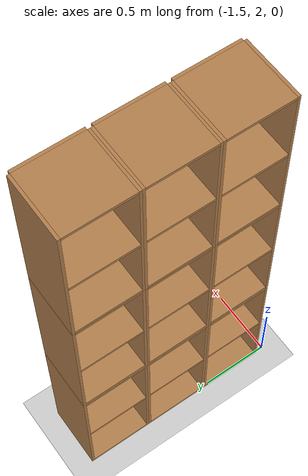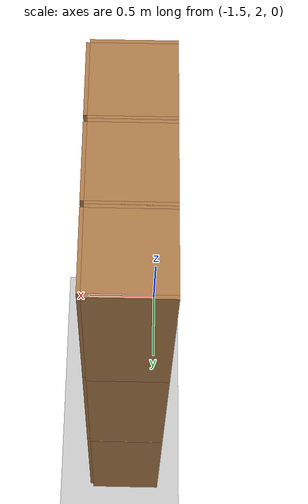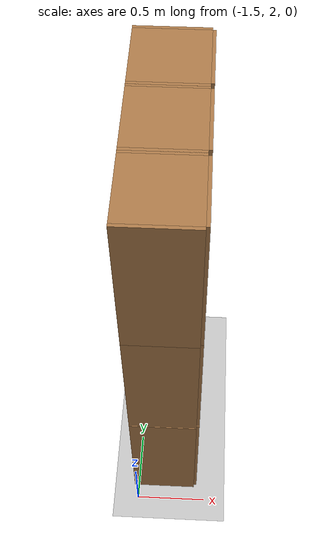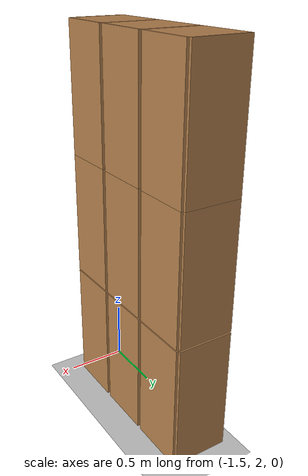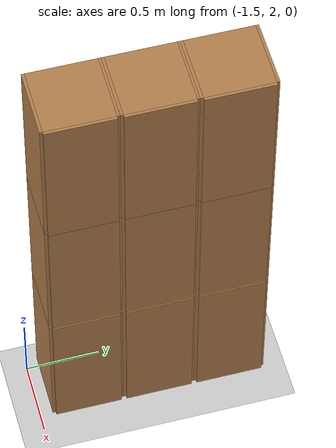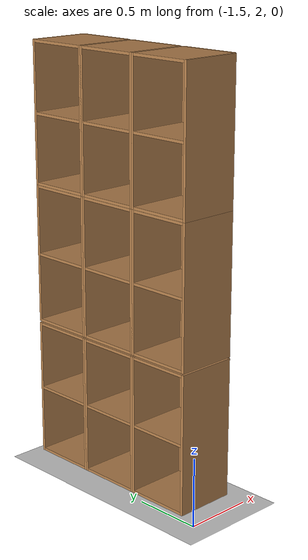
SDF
<sdf version="1.6">
 <world name="default">
  <model name="ground_plane">
   <static>1</static>
   <link name="link">
    <collision name="collision">
     <geometry><plane><normal>0 0 1</normal><size>100 100</size></plane></geometry>
     <surface>
      <contact><collide_bitmask>65535</collide_bitmask></contact>
      <friction><ode><mu>100</mu><mu2>50</mu2></ode></friction>
     </surface>
    </collision>
    <visual name="visual">
     <cast_shadows>0</cast_shadows>
     <geometry><plane><normal>0 0 1</normal><size>100 100</size></plane></geometry>
     <material>
      <script><uri>file://media/materials/scripts/gazebo.material</uri><name>Gazebo/Grey</name></script>
     </material>
    </visual>
   </link>
  </model>
  <model name="Locker18_clone_4_clone_2_clone_2_clone_1">
   <model name="Locker18">
    <model name="Locker3">
     <model name="cabinet">
      <static>1</static>
      <link name="cabinet_bottom_plate">
       <inertial>
        <pose>0 0 -1 0 -0 0</pose>
        <inertia><ixx>2.05</ixx><ixy>0</ixy><ixz>0</ixz><iyy>2.05</iyy><iyz>0</iyz><izz>2.05</izz></inertia>
        <mass>25</mass>
       </inertial>
       <collision name="cabinet_bottom_plate_geom">
        <pose>0 0 0.01 0 -0 0</pose>
        <geometry><box><size>0.45 0.45 0.02</size></box></geometry>
       </collision>
       <visual name="cabinet_bottom_plate_geom_visual">
        <pose>0 0 0.01 0 -0 0</pose>
        <geometry><box><size>0.45 0.45 0.02</size></box></geometry>
        <material>
         <script><uri>file://media/materials/scripts/gazebo.material</uri><name>Gazebo/Wood</name></script>
        </material>
       </visual>
       <collision name="cabinet_bottom_plate_geom_cabinet_back_plate">
        <pose>0.235 0 0.51 0 -0 0</pose>
        <geometry><box><size>0.02 0.45 1.02</size></box></geometry>
       </collision>
       <visual name="cabinet_bottom_plate_geom_cabinet_back_plate_visual">
        <pose>0.235 0 0.51 0 -0 0</pose>
        <geometry><box><size>0.02 0.45 1.02</size></box></geometry>
        <material>
         <script><uri>file://media/materials/scripts/gazebo.material</uri><name>Gazebo/Wood</name></script>
        </material>
       </visual>
       <collision name="cabinet_bottom_plate_geom_cabinet_left_plate">
        <pose>0 0.235 0.51 0 -0 0</pose>
        <geometry><box><size>0.45 0.02 1.02</size></box></geometry>
       </collision>
       <visual name="cabinet_bottom_plate_geom_cabinet_left_plate_visual">
        <pose>0 0.235 0.51 0 -0 0</pose>
        <geometry><box><size>0.45 0.02 1.02</size></box></geometry>
        <material>
         <script><uri>file://media/materials/scripts/gazebo.material</uri><name>Gazebo/Wood</name></script>
        </material>
       </visual>
       <collision name="cabinet_bottom_plate_geom_cabinet_middle_plate">
        <pose>0 0 0.51 0 -0 0</pose>
        <geometry><box><size>0.45 0.45 0.02</size></box></geometry>
       </collision>
       <visual name="cabinet_bottom_plate_geom_cabinet_middle_plate_visual">
        <pose>0 0 0.51 0 -0 0</pose>
        <geometry><box><size>0.45 0.45 0.02</size></box></geometry>
        <material>
         <script><uri>file://media/materials/scripts/gazebo.material</uri><name>Gazebo/Wood</name></script>
        </material>
       </visual>
       <collision name="cabinet_bottom_plate_geom_cabinet_right_plate">
        <pose>0 -0.235 0.51 0 -0 0</pose>
        <geometry><box><size>0.45 0.02 1.02</size></box></geometry>
       </collision>
       <visual name="cabinet_bottom_plate_geom_cabinet_right_plate_visual">
        <pose>0 -0.235 0.51 0 -0 0</pose>
        <geometry><box><size>0.45 0.02 1.02</size></box></geometry>
        <material>
         <script><uri>file://media/materials/scripts/gazebo.material</uri><name>Gazebo/Wood</name></script>
        </material>
       </visual>
       <collision name="cabinet_bottom_plate_geom_cabinet_top_plate">
        <pose>0 0 1.01 0 -0 0</pose>
        <geometry><box><size>0.45 0.45 0.02</size></box></geometry>
       </collision>
       <visual name="cabinet_bottom_plate_geom_cabinet_top_plate_visual">
        <pose>0 0 1.01 0 -0 0</pose>
        <geometry><box><size>0.45 0.45 0.02</size></box></geometry>
        <material>
         <script><uri>file://media/materials/scripts/gazebo.material</uri><name>Gazebo/Wood</name></script>
        </material>
       </visual>
      </link>
      <pose>-0.676968 1.45758 0 0 -0 0</pose>
     </model>
     <model name="cabinet_clone">
      <static>1</static>
      <link name="cabinet_bottom_plate">
       <inertial>
        <pose>0 0 -1 0 -0 0</pose>
        <inertia><ixx>2.05</ixx><ixy>0</ixy><ixz>0</ixz><iyy>2.05</iyy><iyz>0</iyz><izz>2.05</izz></inertia>
        <mass>25</mass>
       </inertial>
       <collision name="cabinet_bottom_plate_geom">
        <pose>0 0 0.01 0 -0 0</pose>
        <geometry><box><size>0.45 0.45 0.02</size></box></geometry>
       </collision>
       <visual name="cabinet_bottom_plate_geom_visual">
        <pose>0 0 0.01 0 -0 0</pose>
        <geometry><box><size>0.45 0.45 0.02</size></box></geometry>
        <material>
         <script><uri>file://media/materials/scripts/gazebo.material</uri><name>Gazebo/Wood</name></script>
        </material>
       </visual>
       <collision name="cabinet_bottom_plate_geom_cabinet_back_plate">
        <pose>0.235 0 0.51 0 -0 0</pose>
        <geometry><box><size>0.02 0.45 1.02</size></box></geometry>
       </collision>
       <visual name="cabinet_bottom_plate_geom_cabinet_back_plate_visual">
        <pose>0.235 0 0.51 0 -0 0</pose>
        <geometry><box><size>0.02 0.45 1.02</size></box></geometry>
        <material>
         <script><uri>file://media/materials/scripts/gazebo.material</uri><name>Gazebo/Wood</name></script>
        </material>
       </visual>
       <collision name="cabinet_bottom_plate_geom_cabinet_left_plate">
        <pose>0 0.235 0.51 0 -0 0</pose>
        <geometry><box><size>0.45 0.02 1.02</size></box></geometry>
       </collision>
       <visual name="cabinet_bottom_plate_geom_cabinet_left_plate_visual">
        <pose>0 0.235 0.51 0 -0 0</pose>
        <geometry><box><size>0.45 0.02 1.02</size></box></geometry>
        <material>
         <script><uri>file://media/materials/scripts/gazebo.material</uri><name>Gazebo/Wood</name></script>
        </material>
       </visual>
       <collision name="cabinet_bottom_plate_geom_cabinet_middle_plate">
        <pose>0 0 0.51 0 -0 0</pose>
        <geometry><box><size>0.45 0.45 0.02</size></box></geometry>
       </collision>
       <visual name="cabinet_bottom_plate_geom_cabinet_middle_plate_visual">
        <pose>0 0 0.51 0 -0 0</pose>
        <geometry><box><size>0.45 0.45 0.02</size></box></geometry>
        <material>
         <script><uri>file://media/materials/scripts/gazebo.material</uri><name>Gazebo/Wood</name></script>
        </material>
       </visual>
       <collision name="cabinet_bottom_plate_geom_cabinet_right_plate">
        <pose>0 -0.235 0.51 0 -0 0</pose>
        <geometry><box><size>0.45 0.02 1.02</size></box></geometry>
       </collision>
       <visual name="cabinet_bottom_plate_geom_cabinet_right_plate_visual">
        <pose>0 -0.235 0.51 0 -0 0</pose>
        <geometry><box><size>0.45 0.02 1.02</size></box></geometry>
        <material>
         <script><uri>file://media/materials/scripts/gazebo.material</uri><name>Gazebo/Wood</name></script>
        </material>
       </visual>
       <collision name="cabinet_bottom_plate_geom_cabinet_top_plate">
        <pose>0 0 1.01 0 -0 0</pose>
        <geometry><box><size>0.45 0.45 0.02</size></box></geometry>
       </collision>
       <visual name="cabinet_bottom_plate_geom_cabinet_top_plate_visual">
        <pose>0 0 1.01 0 -0 0</pose>
        <geometry><box><size>0.45 0.45 0.02</size></box></geometry>
        <material>
         <script><uri>file://media/materials/scripts/gazebo.material</uri><name>Gazebo/Wood</name></script>
        </material>
       </visual>
      </link>
      <pose>-0.676968 0.970971 0 0 -0 0</pose>
     </model>
     <model name="cabinet_clone_0">
      <static>1</static>
      <link name="cabinet_bottom_plate">
       <inertial>
        <pose>0 0 -1 0 -0 0</pose>
        <inertia><ixx>2.05</ixx><ixy>0</ixy><ixz>0</ixz><iyy>2.05</iyy><iyz>0</iyz><izz>2.05</izz></inertia>
        <mass>25</mass>
       </inertial>
       <collision name="cabinet_bottom_plate_geom">
        <pose>0 0 0.01 0 -0 0</pose>
        <geometry><box><size>0.45 0.45 0.02</size></box></geometry>
       </collision>
       <visual name="cabinet_bottom_plate_geom_visual">
        <pose>0 0 0.01 0 -0 0</pose>
        <geometry><box><size>0.45 0.45 0.02</size></box></geometry>
        <material>
         <script><uri>file://media/materials/scripts/gazebo.material</uri><name>Gazebo/Wood</name></script>
        </material>
       </visual>
       <collision name="cabinet_bottom_plate_geom_cabinet_back_plate">
        <pose>0.235 0 0.51 0 -0 0</pose>
        <geometry><box><size>0.02 0.45 1.02</size></box></geometry>
       </collision>
       <visual name="cabinet_bottom_plate_geom_cabinet_back_plate_visual">
        <pose>0.235 0 0.51 0 -0 0</pose>
        <geometry><box><size>0.02 0.45 1.02</size></box></geometry>
        <material>
         <script><uri>file://media/materials/scripts/gazebo.material</uri><name>Gazebo/Wood</name></script>
        </material>
       </visual>
       <collision name="cabinet_bottom_plate_geom_cabinet_left_plate">
        <pose>0 0.235 0.51 0 -0 0</pose>
        <geometry><box><size>0.45 0.02 1.02</size></box></geometry>
       </collision>
       <visual name="cabinet_bottom_plate_geom_cabinet_left_plate_visual">
        <pose>0 0.235 0.51 0 -0 0</pose>
        <geometry><box><size>0.45 0.02 1.02</size></box></geometry>
        <material>
         <script><uri>file://media/materials/scripts/gazebo.material</uri><name>Gazebo/Wood</name></script>
        </material>
       </visual>
       <collision name="cabinet_bottom_plate_geom_cabinet_middle_plate">
        <pose>0 0 0.51 0 -0 0</pose>
        <geometry><box><size>0.45 0.45 0.02</size></box></geometry>
       </collision>
       <visual name="cabinet_bottom_plate_geom_cabinet_middle_plate_visual">
        <pose>0 0 0.51 0 -0 0</pose>
        <geometry><box><size>0.45 0.45 0.02</size></box></geometry>
        <material>
         <script><uri>file://media/materials/scripts/gazebo.material</uri><name>Gazebo/Wood</name></script>
        </material>
       </visual>
       <collision name="cabinet_bottom_plate_geom_cabinet_right_plate">
        <pose>0 -0.235 0.51 0 -0 0</pose>
        <geometry><box><size>0.45 0.02 1.02</size></box></geometry>
       </collision>
       <visual name="cabinet_bottom_plate_geom_cabinet_right_plate_visual">
        <pose>0 -0.235 0.51 0 -0 0</pose>
        <geometry><box><size>0.45 0.02 1.02</size></box></geometry>
        <material>
         <script><uri>file://media/materials/scripts/gazebo.material</uri><name>Gazebo/Wood</name></script>
        </material>
       </visual>
       <collision name="cabinet_bottom_plate_geom_cabinet_top_plate">
        <pose>0 0 1.01 0 -0 0</pose>
        <geometry><box><size>0.45 0.45 0.02</size></box></geometry>
       </collision>
       <visual name="cabinet_bottom_plate_geom_cabinet_top_plate_visual">
        <pose>0 0 1.01 0 -0 0</pose>
        <geometry><box><size>0.45 0.45 0.02</size></box></geometry>
        <material>
         <script><uri>file://media/materials/scripts/gazebo.material</uri><name>Gazebo/Wood</name></script>
        </material>
       </visual>
      </link>
      <pose>-0.676968 0.48391 0 0 -0 0</pose>
     </model>
     <static>0</static>
     <pose>0 3e-06 -1.02763 0 -0 0</pose>
    </model>
    <model name="Locker3_clone">
     <model name="cabinet">
      <static>1</static>
      <link name="cabinet_bottom_plate">
       <inertial>
        <pose>0 0 -1 0 -0 0</pose>
        <inertia><ixx>2.05</ixx><ixy>0</ixy><ixz>0</ixz><iyy>2.05</iyy><iyz>0</iyz><izz>2.05</izz></inertia>
        <mass>25</mass>
       </inertial>
       <collision name="cabinet_bottom_plate_geom">
        <pose>0 0 0.01 0 -0 0</pose>
        <geometry><box><size>0.45 0.45 0.02</size></box></geometry>
       </collision>
       <visual name="cabinet_bottom_plate_geom_visual">
        <pose>0 0 0.01 0 -0 0</pose>
        <geometry><box><size>0.45 0.45 0.02</size></box></geometry>
        <material>
         <script><uri>file://media/materials/scripts/gazebo.material</uri><name>Gazebo/Wood</name></script>
        </material>
       </visual>
       <collision name="cabinet_bottom_plate_geom_cabinet_back_plate">
        <pose>0.235 0 0.51 0 -0 0</pose>
        <geometry><box><size>0.02 0.45 1.02</size></box></geometry>
       </collision>
       <visual name="cabinet_bottom_plate_geom_cabinet_back_plate_visual">
        <pose>0.235 0 0.51 0 -0 0</pose>
        <geometry><box><size>0.02 0.45 1.02</size></box></geometry>
        <material>
         <script><uri>file://media/materials/scripts/gazebo.material</uri><name>Gazebo/Wood</name></script>
        </material>
       </visual>
       <collision name="cabinet_bottom_plate_geom_cabinet_left_plate">
        <pose>0 0.235 0.51 0 -0 0</pose>
        <geometry><box><size>0.45 0.02 1.02</size></box></geometry>
       </collision>
       <visual name="cabinet_bottom_plate_geom_cabinet_left_plate_visual">
        <pose>0 0.235 0.51 0 -0 0</pose>
        <geometry><box><size>0.45 0.02 1.02</size></box></geometry>
        <material>
         <script><uri>file://media/materials/scripts/gazebo.material</uri><name>Gazebo/Wood</name></script>
        </material>
       </visual>
       <collision name="cabinet_bottom_plate_geom_cabinet_middle_plate">
        <pose>0 0 0.51 0 -0 0</pose>
        <geometry><box><size>0.45 0.45 0.02</size></box></geometry>
       </collision>
       <visual name="cabinet_bottom_plate_geom_cabinet_middle_plate_visual">
        <pose>0 0 0.51 0 -0 0</pose>
        <geometry><box><size>0.45 0.45 0.02</size></box></geometry>
        <material>
         <script><uri>file://media/materials/scripts/gazebo.material</uri><name>Gazebo/Wood</name></script>
        </material>
       </visual>
       <collision name="cabinet_bottom_plate_geom_cabinet_right_plate">
        <pose>0 -0.235 0.51 0 -0 0</pose>
        <geometry><box><size>0.45 0.02 1.02</size></box></geometry>
       </collision>
       <visual name="cabinet_bottom_plate_geom_cabinet_right_plate_visual">
        <pose>0 -0.235 0.51 0 -0 0</pose>
        <geometry><box><size>0.45 0.02 1.02</size></box></geometry>
        <material>
         <script><uri>file://media/materials/scripts/gazebo.material</uri><name>Gazebo/Wood</name></script>
        </material>
       </visual>
       <collision name="cabinet_bottom_plate_geom_cabinet_top_plate">
        <pose>0 0 1.01 0 -0 0</pose>
        <geometry><box><size>0.45 0.45 0.02</size></box></geometry>
       </collision>
       <visual name="cabinet_bottom_plate_geom_cabinet_top_plate_visual">
        <pose>0 0 1.01 0 -0 0</pose>
        <geometry><box><size>0.45 0.45 0.02</size></box></geometry>
        <material>
         <script><uri>file://media/materials/scripts/gazebo.material</uri><name>Gazebo/Wood</name></script>
        </material>
       </visual>
      </link>
      <pose>-0.676968 1.45758 0 0 -0 0</pose>
     </model>
     <model name="cabinet_clone">
      <static>1</static>
      <link name="cabinet_bottom_plate">
       <inertial>
        <pose>0 0 -1 0 -0 0</pose>
        <inertia><ixx>2.05</ixx><ixy>0</ixy><ixz>0</ixz><iyy>2.05</iyy><iyz>0</iyz><izz>2.05</izz></inertia>
        <mass>25</mass>
       </inertial>
       <collision name="cabinet_bottom_plate_geom">
        <pose>0 0 0.01 0 -0 0</pose>
        <geometry><box><size>0.45 0.45 0.02</size></box></geometry>
       </collision>
       <visual name="cabinet_bottom_plate_geom_visual">
        <pose>0 0 0.01 0 -0 0</pose>
        <geometry><box><size>0.45 0.45 0.02</size></box></geometry>
        <material>
         <script><uri>file://media/materials/scripts/gazebo.material</uri><name>Gazebo/Wood</name></script>
        </material>
       </visual>
       <collision name="cabinet_bottom_plate_geom_cabinet_back_plate">
        <pose>0.235 0 0.51 0 -0 0</pose>
        <geometry><box><size>0.02 0.45 1.02</size></box></geometry>
       </collision>
       <visual name="cabinet_bottom_plate_geom_cabinet_back_plate_visual">
        <pose>0.235 0 0.51 0 -0 0</pose>
        <geometry><box><size>0.02 0.45 1.02</size></box></geometry>
        <material>
         <script><uri>file://media/materials/scripts/gazebo.material</uri><name>Gazebo/Wood</name></script>
        </material>
       </visual>
       <collision name="cabinet_bottom_plate_geom_cabinet_left_plate">
        <pose>0 0.235 0.51 0 -0 0</pose>
        <geometry><box><size>0.45 0.02 1.02</size></box></geometry>
       </collision>
       <visual name="cabinet_bottom_plate_geom_cabinet_left_plate_visual">
        <pose>0 0.235 0.51 0 -0 0</pose>
        <geometry><box><size>0.45 0.02 1.02</size></box></geometry>
        <material>
         <script><uri>file://media/materials/scripts/gazebo.material</uri><name>Gazebo/Wood</name></script>
        </material>
       </visual>
       <collision name="cabinet_bottom_plate_geom_cabinet_middle_plate">
        <pose>0 0 0.51 0 -0 0</pose>
        <geometry><box><size>0.45 0.45 0.02</size></box></geometry>
       </collision>
       <visual name="cabinet_bottom_plate_geom_cabinet_middle_plate_visual">
        <pose>0 0 0.51 0 -0 0</pose>
        <geometry><box><size>0.45 0.45 0.02</size></box></geometry>
        <material>
         <script><uri>file://media/materials/scripts/gazebo.material</uri><name>Gazebo/Wood</name></script>
        </material>
       </visual>
       <collision name="cabinet_bottom_plate_geom_cabinet_right_plate">
        <pose>0 -0.235 0.51 0 -0 0</pose>
        <geometry><box><size>0.45 0.02 1.02</size></box></geometry>
       </collision>
       <visual name="cabinet_bottom_plate_geom_cabinet_right_plate_visual">
        <pose>0 -0.235 0.51 0 -0 0</pose>
        <geometry><box><size>0.45 0.02 1.02</size></box></geometry>
        <material>
         <script><uri>file://media/materials/scripts/gazebo.material</uri><name>Gazebo/Wood</name></script>
        </material>
       </visual>
       <collision name="cabinet_bottom_plate_geom_cabinet_top_plate">
        <pose>0 0 1.01 0 -0 0</pose>
        <geometry><box><size>0.45 0.45 0.02</size></box></geometry>
       </collision>
       <visual name="cabinet_bottom_plate_geom_cabinet_top_plate_visual">
        <pose>0 0 1.01 0 -0 0</pose>
        <geometry><box><size>0.45 0.45 0.02</size></box></geometry>
        <material>
         <script><uri>file://media/materials/scripts/gazebo.material</uri><name>Gazebo/Wood</name></script>
        </material>
       </visual>
      </link>
      <pose>-0.676968 0.970971 0 0 -0 0</pose>
     </model>
     <model name="cabinet_clone_0">
      <static>1</static>
      <link name="cabinet_bottom_plate">
       <inertial>
        <pose>0 0 -1 0 -0 0</pose>
        <inertia><ixx>2.05</ixx><ixy>0</ixy><ixz>0</ixz><iyy>2.05</iyy><iyz>0</iyz><izz>2.05</izz></inertia>
        <mass>25</mass>
       </inertial>
       <collision name="cabinet_bottom_plate_geom">
        <pose>0 0 0.01 0 -0 0</pose>
        <geometry><box><size>0.45 0.45 0.02</size></box></geometry>
       </collision>
       <visual name="cabinet_bottom_plate_geom_visual">
        <pose>0 0 0.01 0 -0 0</pose>
        <geometry><box><size>0.45 0.45 0.02</size></box></geometry>
        <material>
         <script><uri>file://media/materials/scripts/gazebo.material</uri><name>Gazebo/Wood</name></script>
        </material>
       </visual>
       <collision name="cabinet_bottom_plate_geom_cabinet_back_plate">
        <pose>0.235 0 0.51 0 -0 0</pose>
        <geometry><box><size>0.02 0.45 1.02</size></box></geometry>
       </collision>
       <visual name="cabinet_bottom_plate_geom_cabinet_back_plate_visual">
        <pose>0.235 0 0.51 0 -0 0</pose>
        <geometry><box><size>0.02 0.45 1.02</size></box></geometry>
        <material>
         <script><uri>file://media/materials/scripts/gazebo.material</uri><name>Gazebo/Wood</name></script>
        </material>
       </visual>
       <collision name="cabinet_bottom_plate_geom_cabinet_left_plate">
        <pose>0 0.235 0.51 0 -0 0</pose>
        <geometry><box><size>0.45 0.02 1.02</size></box></geometry>
       </collision>
       <visual name="cabinet_bottom_plate_geom_cabinet_left_plate_visual">
        <pose>0 0.235 0.51 0 -0 0</pose>
        <geometry><box><size>0.45 0.02 1.02</size></box></geometry>
        <material>
         <script><uri>file://media/materials/scripts/gazebo.material</uri><name>Gazebo/Wood</name></script>
        </material>
       </visual>
       <collision name="cabinet_bottom_plate_geom_cabinet_middle_plate">
        <pose>0 0 0.51 0 -0 0</pose>
        <geometry><box><size>0.45 0.45 0.02</size></box></geometry>
       </collision>
       <visual name="cabinet_bottom_plate_geom_cabinet_middle_plate_visual">
        <pose>0 0 0.51 0 -0 0</pose>
        <geometry><box><size>0.45 0.45 0.02</size></box></geometry>
        <material>
         <script><uri>file://media/materials/scripts/gazebo.material</uri><name>Gazebo/Wood</name></script>
        </material>
       </visual>
       <collision name="cabinet_bottom_plate_geom_cabinet_right_plate">
        <pose>0 -0.235 0.51 0 -0 0</pose>
        <geometry><box><size>0.45 0.02 1.02</size></box></geometry>
       </collision>
       <visual name="cabinet_bottom_plate_geom_cabinet_right_plate_visual">
        <pose>0 -0.235 0.51 0 -0 0</pose>
        <geometry><box><size>0.45 0.02 1.02</size></box></geometry>
        <material>
         <script><uri>file://media/materials/scripts/gazebo.material</uri><name>Gazebo/Wood</name></script>
        </material>
       </visual>
       <collision name="cabinet_bottom_plate_geom_cabinet_top_plate">
        <pose>0 0 1.01 0 -0 0</pose>
        <geometry><box><size>0.45 0.45 0.02</size></box></geometry>
       </collision>
       <visual name="cabinet_bottom_plate_geom_cabinet_top_plate_visual">
        <pose>0 0 1.01 0 -0 0</pose>
        <geometry><box><size>0.45 0.45 0.02</size></box></geometry>
        <material>
         <script><uri>file://media/materials/scripts/gazebo.material</uri><name>Gazebo/Wood</name></script>
        </material>
       </visual>
      </link>
      <pose>-0.676968 0.48391 0 0 -0 0</pose>
     </model>
     <static>0</static>
     <pose>0 3e-06 0.003717 0 -0 0</pose>
    </model>
    <model name="Locker3_clone_clone">
     <model name="cabinet">
      <static>1</static>
      <link name="cabinet_bottom_plate">
       <inertial>
        <pose>0 0 -1 0 -0 0</pose>
        <inertia><ixx>2.05</ixx><ixy>0</ixy><ixz>0</ixz><iyy>2.05</iyy><iyz>0</iyz><izz>2.05</izz></inertia>
        <mass>25</mass>
       </inertial>
       <collision name="cabinet_bottom_plate_geom">
        <pose>0 0 0.01 0 -0 0</pose>
        <geometry><box><size>0.45 0.45 0.02</size></box></geometry>
       </collision>
       <visual name="cabinet_bottom_plate_geom_visual">
        <pose>0 0 0.01 0 -0 0</pose>
        <geometry><box><size>0.45 0.45 0.02</size></box></geometry>
        <material>
         <script><uri>file://media/materials/scripts/gazebo.material</uri><name>Gazebo/Wood</name></script>
        </material>
       </visual>
       <collision name="cabinet_bottom_plate_geom_cabinet_back_plate">
        <pose>0.235 0 0.51 0 -0 0</pose>
        <geometry><box><size>0.02 0.45 1.02</size></box></geometry>
       </collision>
       <visual name="cabinet_bottom_plate_geom_cabinet_back_plate_visual">
        <pose>0.235 0 0.51 0 -0 0</pose>
        <geometry><box><size>0.02 0.45 1.02</size></box></geometry>
        <material>
         <script><uri>file://media/materials/scripts/gazebo.material</uri><name>Gazebo/Wood</name></script>
        </material>
       </visual>
       <collision name="cabinet_bottom_plate_geom_cabinet_left_plate">
        <pose>0 0.235 0.51 0 -0 0</pose>
        <geometry><box><size>0.45 0.02 1.02</size></box></geometry>
       </collision>
       <visual name="cabinet_bottom_plate_geom_cabinet_left_plate_visual">
        <pose>0 0.235 0.51 0 -0 0</pose>
        <geometry><box><size>0.45 0.02 1.02</size></box></geometry>
        <material>
         <script><uri>file://media/materials/scripts/gazebo.material</uri><name>Gazebo/Wood</name></script>
        </material>
       </visual>
       <collision name="cabinet_bottom_plate_geom_cabinet_middle_plate">
        <pose>0 0 0.51 0 -0 0</pose>
        <geometry><box><size>0.45 0.45 0.02</size></box></geometry>
       </collision>
       <visual name="cabinet_bottom_plate_geom_cabinet_middle_plate_visual">
        <pose>0 0 0.51 0 -0 0</pose>
        <geometry><box><size>0.45 0.45 0.02</size></box></geometry>
        <material>
         <script><uri>file://media/materials/scripts/gazebo.material</uri><name>Gazebo/Wood</name></script>
        </material>
       </visual>
       <collision name="cabinet_bottom_plate_geom_cabinet_right_plate">
        <pose>0 -0.235 0.51 0 -0 0</pose>
        <geometry><box><size>0.45 0.02 1.02</size></box></geometry>
       </collision>
       <visual name="cabinet_bottom_plate_geom_cabinet_right_plate_visual">
        <pose>0 -0.235 0.51 0 -0 0</pose>
        <geometry><box><size>0.45 0.02 1.02</size></box></geometry>
        <material>
         <script><uri>file://media/materials/scripts/gazebo.material</uri><name>Gazebo/Wood</name></script>
        </material>
       </visual>
       <collision name="cabinet_bottom_plate_geom_cabinet_top_plate">
        <pose>0 0 1.01 0 -0 0</pose>
        <geometry><box><size>0.45 0.45 0.02</size></box></geometry>
       </collision>
       <visual name="cabinet_bottom_plate_geom_cabinet_top_plate_visual">
        <pose>0 0 1.01 0 -0 0</pose>
        <geometry><box><size>0.45 0.45 0.02</size></box></geometry>
        <material>
         <script><uri>file://media/materials/scripts/gazebo.material</uri><name>Gazebo/Wood</name></script>
        </material>
       </visual>
      </link>
      <pose>-0.676968 1.45758 0 0 -0 0</pose>
     </model>
     <model name="cabinet_clone">
      <static>1</static>
      <link name="cabinet_bottom_plate">
       <inertial>
        <pose>0 0 -1 0 -0 0</pose>
        <inertia><ixx>2.05</ixx><ixy>0</ixy><ixz>0</ixz><iyy>2.05</iyy><iyz>0</iyz><izz>2.05</izz></inertia>
        <mass>25</mass>
       </inertial>
       <collision name="cabinet_bottom_plate_geom">
        <pose>0 0 0.01 0 -0 0</pose>
        <geometry><box><size>0.45 0.45 0.02</size></box></geometry>
       </collision>
       <visual name="cabinet_bottom_plate_geom_visual">
        <pose>0 0 0.01 0 -0 0</pose>
        <geometry><box><size>0.45 0.45 0.02</size></box></geometry>
        <material>
         <script><uri>file://media/materials/scripts/gazebo.material</uri><name>Gazebo/Wood</name></script>
        </material>
       </visual>
       <collision name="cabinet_bottom_plate_geom_cabinet_back_plate">
        <pose>0.235 0 0.51 0 -0 0</pose>
        <geometry><box><size>0.02 0.45 1.02</size></box></geometry>
       </collision>
       <visual name="cabinet_bottom_plate_geom_cabinet_back_plate_visual">
        <pose>0.235 0 0.51 0 -0 0</pose>
        <geometry><box><size>0.02 0.45 1.02</size></box></geometry>
        <material>
         <script><uri>file://media/materials/scripts/gazebo.material</uri><name>Gazebo/Wood</name></script>
        </material>
       </visual>
       <collision name="cabinet_bottom_plate_geom_cabinet_left_plate">
        <pose>0 0.235 0.51 0 -0 0</pose>
        <geometry><box><size>0.45 0.02 1.02</size></box></geometry>
       </collision>
       <visual name="cabinet_bottom_plate_geom_cabinet_left_plate_visual">
        <pose>0 0.235 0.51 0 -0 0</pose>
        <geometry><box><size>0.45 0.02 1.02</size></box></geometry>
        <material>
         <script><uri>file://media/materials/scripts/gazebo.material</uri><name>Gazebo/Wood</name></script>
        </material>
       </visual>
       <collision name="cabinet_bottom_plate_geom_cabinet_middle_plate">
        <pose>0 0 0.51 0 -0 0</pose>
        <geometry><box><size>0.45 0.45 0.02</size></box></geometry>
       </collision>
       <visual name="cabinet_bottom_plate_geom_cabinet_middle_plate_visual">
        <pose>0 0 0.51 0 -0 0</pose>
        <geometry><box><size>0.45 0.45 0.02</size></box></geometry>
        <material>
         <script><uri>file://media/materials/scripts/gazebo.material</uri><name>Gazebo/Wood</name></script>
        </material>
       </visual>
       <collision name="cabinet_bottom_plate_geom_cabinet_right_plate">
        <pose>0 -0.235 0.51 0 -0 0</pose>
        <geometry><box><size>0.45 0.02 1.02</size></box></geometry>
       </collision>
       <visual name="cabinet_bottom_plate_geom_cabinet_right_plate_visual">
        <pose>0 -0.235 0.51 0 -0 0</pose>
        <geometry><box><size>0.45 0.02 1.02</size></box></geometry>
        <material>
         <script><uri>file://media/materials/scripts/gazebo.material</uri><name>Gazebo/Wood</name></script>
        </material>
       </visual>
       <collision name="cabinet_bottom_plate_geom_cabinet_top_plate">
        <pose>0 0 1.01 0 -0 0</pose>
        <geometry><box><size>0.45 0.45 0.02</size></box></geometry>
       </collision>
       <visual name="cabinet_bottom_plate_geom_cabinet_top_plate_visual">
        <pose>0 0 1.01 0 -0 0</pose>
        <geometry><box><size>0.45 0.45 0.02</size></box></geometry>
        <material>
         <script><uri>file://media/materials/scripts/gazebo.material</uri><name>Gazebo/Wood</name></script>
        </material>
       </visual>
      </link>
      <pose>-0.676968 0.970971 0 0 -0 0</pose>
     </model>
     <model name="cabinet_clone_0">
      <static>1</static>
      <link name="cabinet_bottom_plate">
       <inertial>
        <pose>0 0 -1 0 -0 0</pose>
        <inertia><ixx>2.05</ixx><ixy>0</ixy><ixz>0</ixz><iyy>2.05</iyy><iyz>0</iyz><izz>2.05</izz></inertia>
        <mass>25</mass>
       </inertial>
       <collision name="cabinet_bottom_plate_geom">
        <pose>0 0 0.01 0 -0 0</pose>
        <geometry><box><size>0.45 0.45 0.02</size></box></geometry>
       </collision>
       <visual name="cabinet_bottom_plate_geom_visual">
        <pose>0 0 0.01 0 -0 0</pose>
        <geometry><box><size>0.45 0.45 0.02</size></box></geometry>
        <material>
         <script><uri>file://media/materials/scripts/gazebo.material</uri><name>Gazebo/Wood</name></script>
        </material>
       </visual>
       <collision name="cabinet_bottom_plate_geom_cabinet_back_plate">
        <pose>0.235 0 0.51 0 -0 0</pose>
        <geometry><box><size>0.02 0.45 1.02</size></box></geometry>
       </collision>
       <visual name="cabinet_bottom_plate_geom_cabinet_back_plate_visual">
        <pose>0.235 0 0.51 0 -0 0</pose>
        <geometry><box><size>0.02 0.45 1.02</size></box></geometry>
        <material>
         <script><uri>file://media/materials/scripts/gazebo.material</uri><name>Gazebo/Wood</name></script>
        </material>
       </visual>
       <collision name="cabinet_bottom_plate_geom_cabinet_left_plate">
        <pose>0 0.235 0.51 0 -0 0</pose>
        <geometry><box><size>0.45 0.02 1.02</size></box></geometry>
       </collision>
       <visual name="cabinet_bottom_plate_geom_cabinet_left_plate_visual">
        <pose>0 0.235 0.51 0 -0 0</pose>
        <geometry><box><size>0.45 0.02 1.02</size></box></geometry>
        <material>
         <script><uri>file://media/materials/scripts/gazebo.material</uri><name>Gazebo/Wood</name></script>
        </material>
       </visual>
       <collision name="cabinet_bottom_plate_geom_cabinet_middle_plate">
        <pose>0 0 0.51 0 -0 0</pose>
        <geometry><box><size>0.45 0.45 0.02</size></box></geometry>
       </collision>
       <visual name="cabinet_bottom_plate_geom_cabinet_middle_plate_visual">
        <pose>0 0 0.51 0 -0 0</pose>
        <geometry><box><size>0.45 0.45 0.02</size></box></geometry>
        <material>
         <script><uri>file://media/materials/scripts/gazebo.material</uri><name>Gazebo/Wood</name></script>
        </material>
       </visual>
       <collision name="cabinet_bottom_plate_geom_cabinet_right_plate">
        <pose>0 -0.235 0.51 0 -0 0</pose>
        <geometry><box><size>0.45 0.02 1.02</size></box></geometry>
       </collision>
       <visual name="cabinet_bottom_plate_geom_cabinet_right_plate_visual">
        <pose>0 -0.235 0.51 0 -0 0</pose>
        <geometry><box><size>0.45 0.02 1.02</size></box></geometry>
        <material>
         <script><uri>file://media/materials/scripts/gazebo.material</uri><name>Gazebo/Wood</name></script>
        </material>
       </visual>
       <collision name="cabinet_bottom_plate_geom_cabinet_top_plate">
        <pose>0 0 1.01 0 -0 0</pose>
        <geometry><box><size>0.45 0.45 0.02</size></box></geometry>
       </collision>
       <visual name="cabinet_bottom_plate_geom_cabinet_top_plate_visual">
        <pose>0 0 1.01 0 -0 0</pose>
        <geometry><box><size>0.45 0.45 0.02</size></box></geometry>
        <material>
         <script><uri>file://media/materials/scripts/gazebo.material</uri><name>Gazebo/Wood</name></script>
        </material>
       </visual>
      </link>
      <pose>-0.676968 0.48391 0 0 -0 0</pose>
     </model>
     <static>0</static>
     <pose>0 3e-06 1.02391 0 -0 0</pose>
    </model>
    <static>0</static>
    <pose>-0 4e-06 4e-06 0 -0 0</pose>
   </model>
   <static>0</static>
   <pose>-0.627236 1.84026 1.08672 0 -0 0</pose>
  </model>
 </world>
</sdf>
